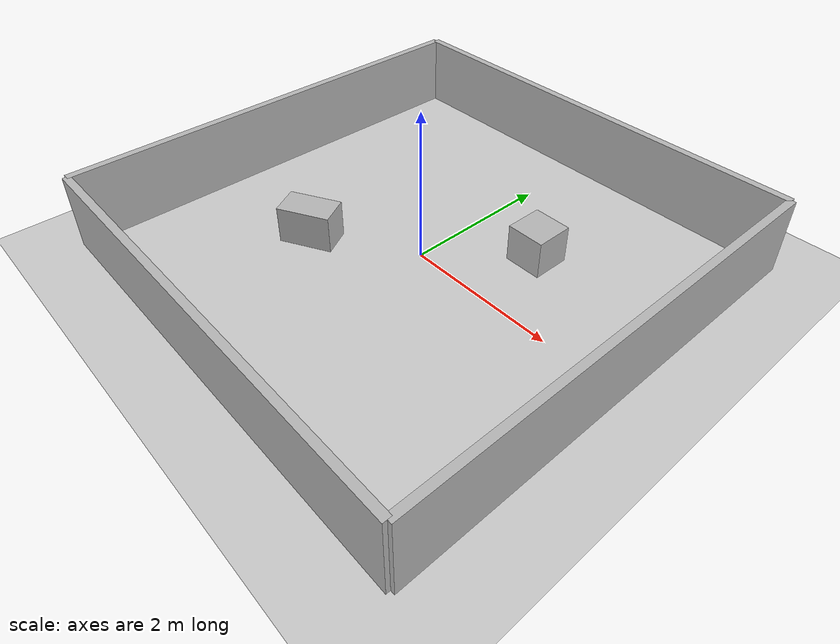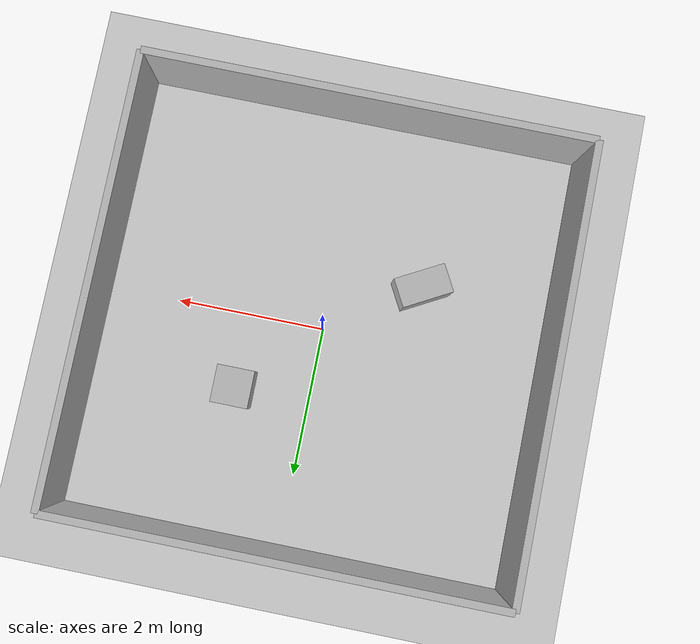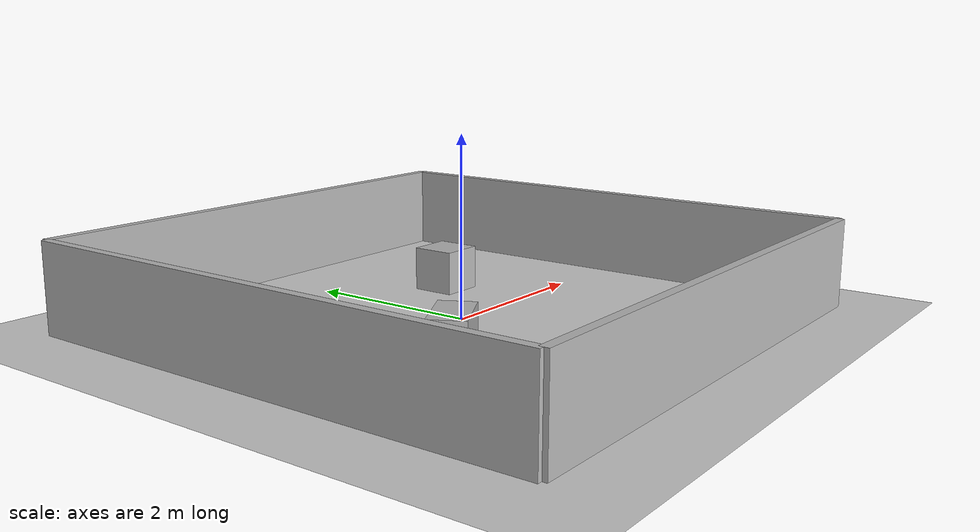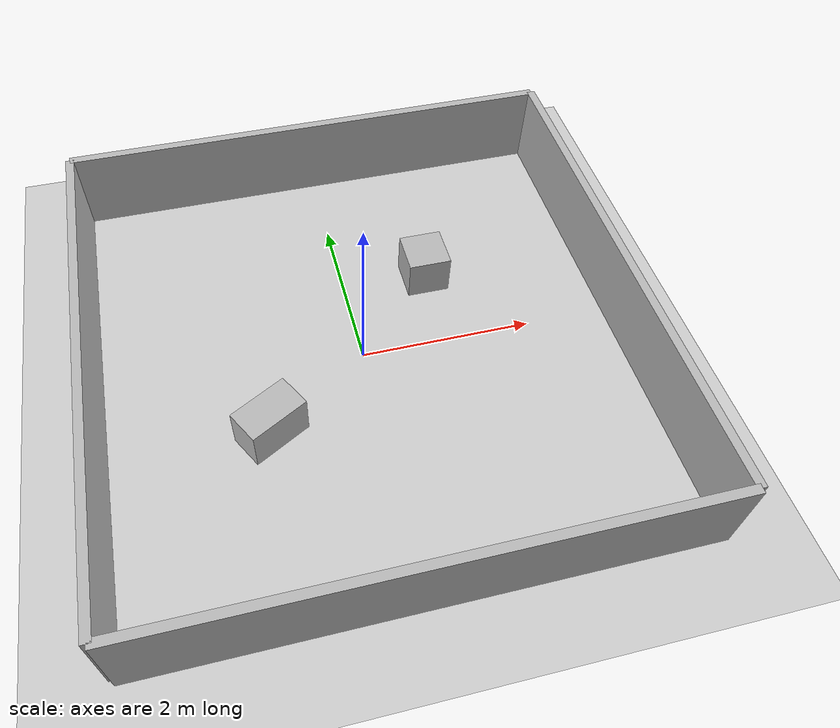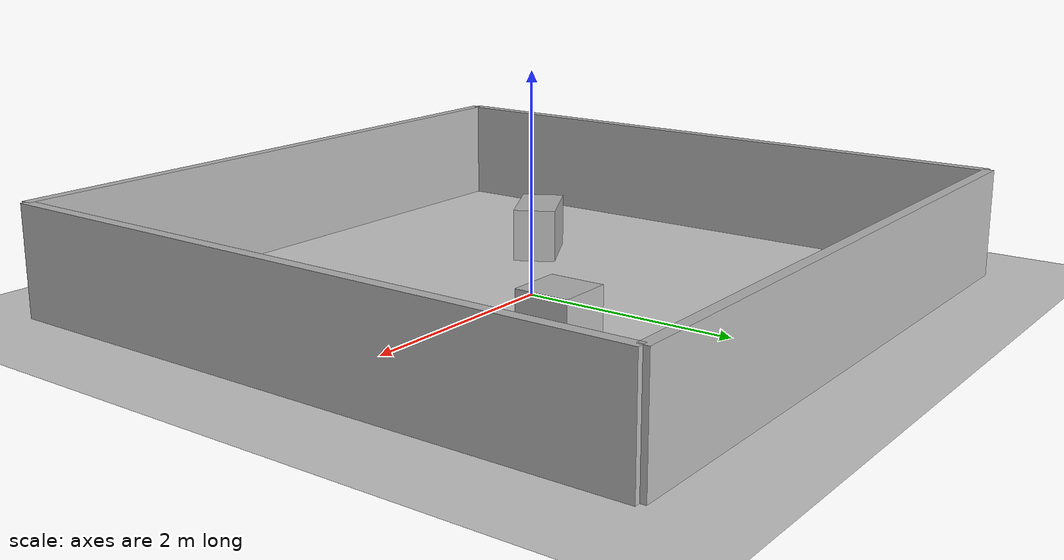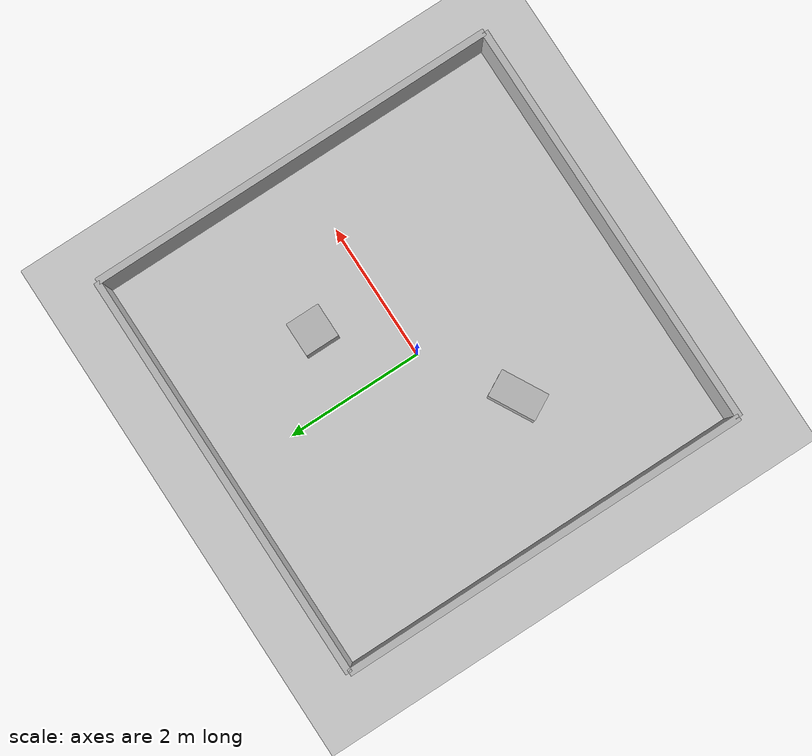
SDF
<?xml version="1.0" ?>
<sdf version="1.6">
  <world name="box_world">

    <include>
      <uri>model://sun</uri>
    </include>

    <include>
      <uri>model://ground_plane</uri>
    </include>

    <physics name="default_physics" default="0" type="ode">
      <max_step_size>0.001</max_step_size>
      <real_time_factor>1.0</real_time_factor>
      <real_time_update_rate>1000</real_time_update_rate>
    </physics>

    <!-- Back wall -->
    <model name="back_wall">
      <static>true</static>
      <pose>0 3 0.5 0 0 0</pose>
      <link name="link">
        <collision name="collision">
          <geometry>
            <box>
              <size>6 0.1 1</size>
            </box>
          </geometry>
        </collision>
        <visual name="visual">
          <geometry>
            <box>
              <size>6 0.1 1</size>
            </box>
          </geometry>
        </visual>
      </link>
    </model>

    <!-- Front wall -->
    <model name="front_wall">
      <static>true</static>
      <pose>0 -3 0.5 0 0 0</pose>
      <link name="link">
        <collision name="collision">
          <geometry>
            <box>
              <size>6 0.1 1</size>
            </box>
          </geometry>
        </collision>
        <visual name="visual">
          <geometry>
            <box>
              <size>6 0.1 1</size>
            </box>
          </geometry>
        </visual>
      </link>
    </model>

    <!-- Left wall -->
    <model name="left_wall">
      <static>true</static>
      <pose>-3 0 0.5 0 0 0</pose>
      <link name="link">
        <collision name="collision">
          <geometry>
            <box>
              <size>0.1 6 1</size>
            </box>
          </geometry>
        </collision>
        <visual name="visual">
          <geometry>
            <box>
              <size>0.1 6 1</size>
            </box>
          </geometry>
        </visual>
      </link>
    </model>

    <!-- Right wall -->
    <model name="right_wall">
      <static>true</static>
      <pose>3 0 0.5 0 0 0</pose>
      <link name="link">
        <collision name="collision">
          <geometry>
            <box>
              <size>0.1 6 1</size>
            </box>
          </geometry>
        </collision>
        <visual name="visual">
          <geometry>
            <box>
              <size>0.1 6 1</size>
            </box>
          </geometry>
        </visual>
      </link>
    </model>

    <!-- Obstacle box 1 -->
    <model name="box_1">
      <static>true</static>
      <pose>1.0 1.0 0.25 0 0 0</pose>
      <link name="link">
        <collision name="collision">
          <geometry>
            <box>
              <size>0.5 0.5 0.5</size>
            </box>
          </geometry>
        </collision>
        <visual name="visual">
          <geometry>
            <box>
              <size>0.5 0.5 0.5</size>
            </box>
          </geometry>
        </visual>
      </link>
    </model>

    <!-- Obstacle box 2 -->
    <model name="box_2">
      <static>true</static>
      <pose>-1.2 -0.8 0.25 0 0 0.5</pose>
      <link name="link">
        <collision name="collision">
          <geometry>
            <box>
              <size>0.7 0.4 0.5</size>
            </box>
          </geometry>
        </collision>
        <visual name="visual">
          <geometry>
            <box>
              <size>0.7 0.4 0.5</size>
            </box>
          </geometry>
        </visual>
      </link>
    </model>

  </world>
</sdf>
